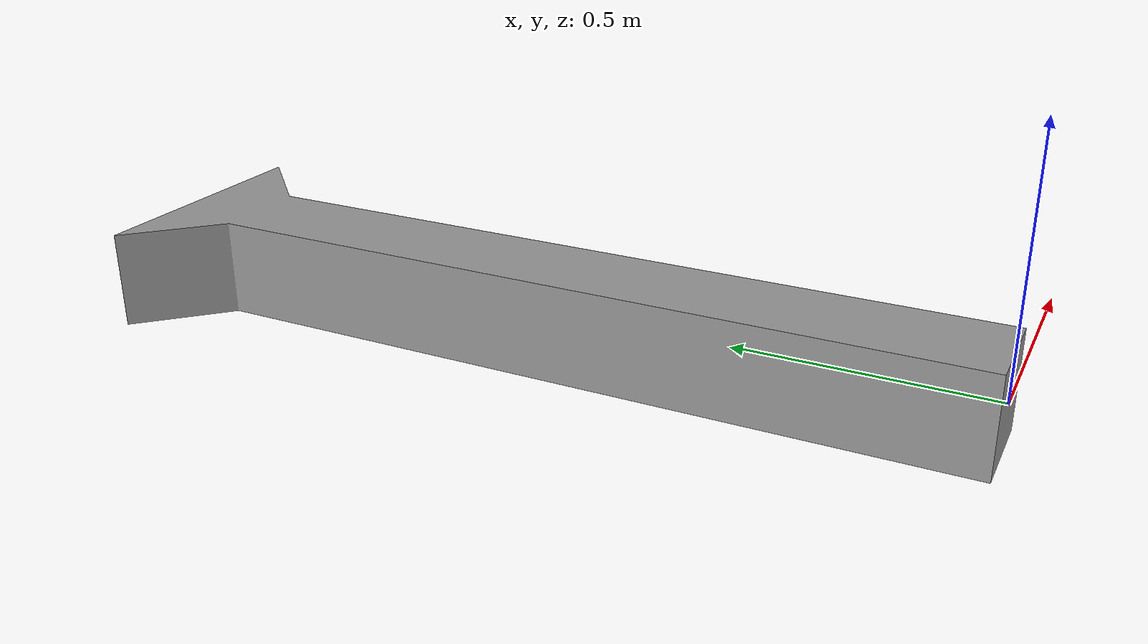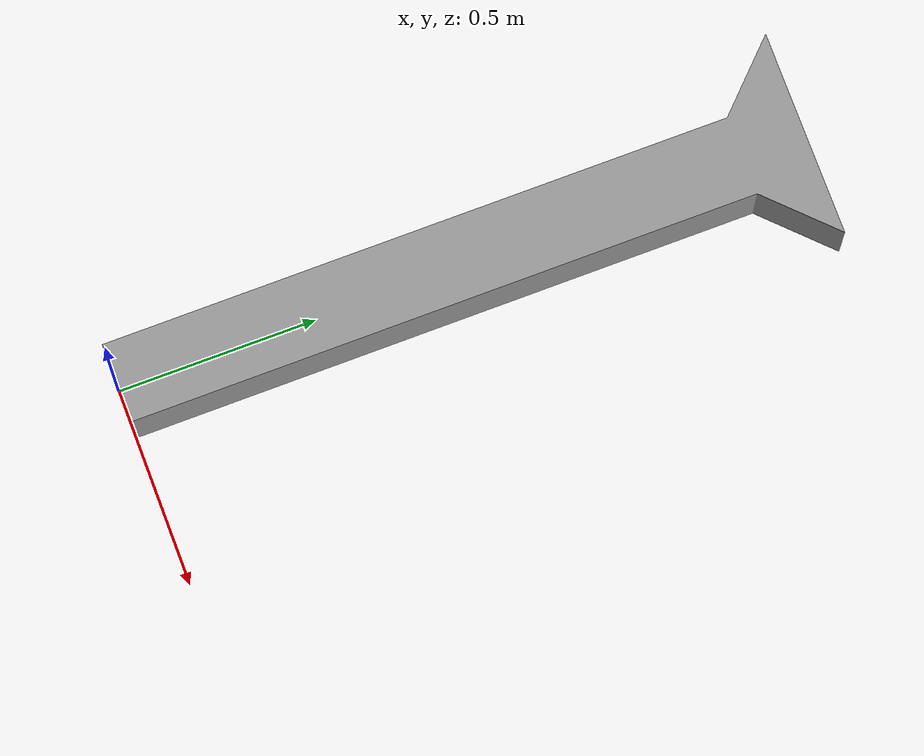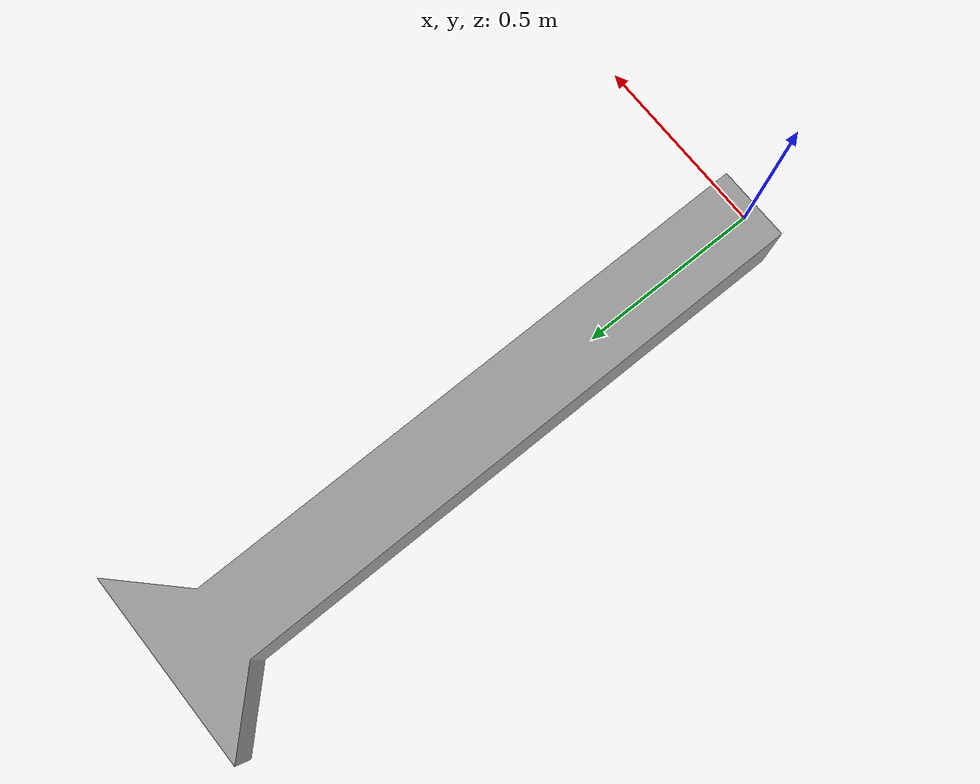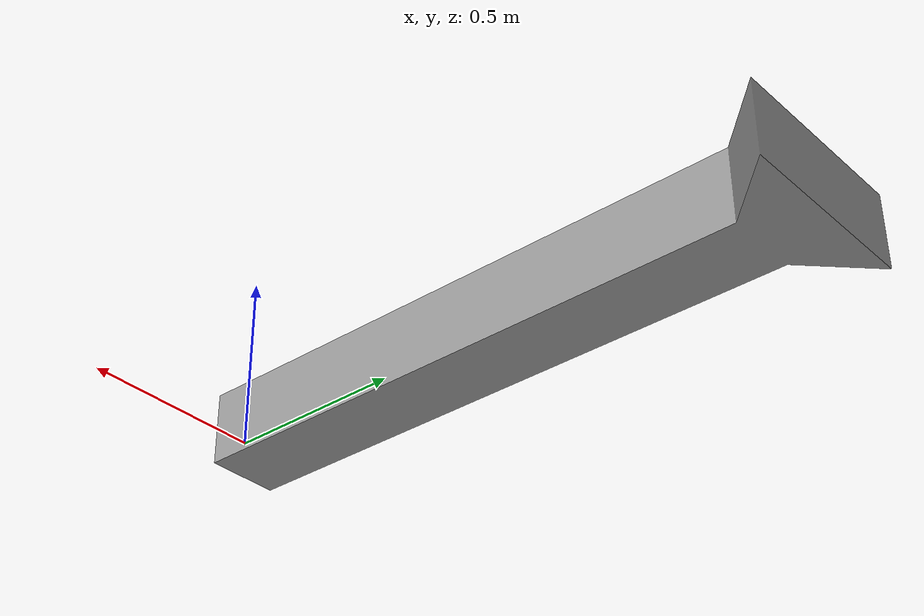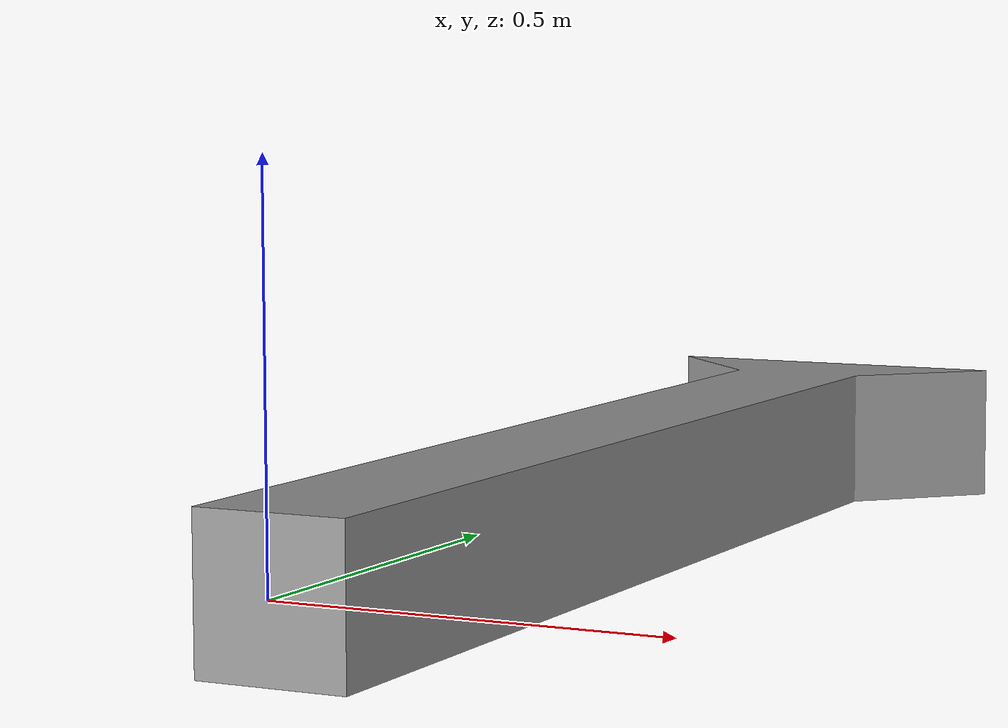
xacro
<?xml version="1.0"?>
<robot xmlns:xacro="http://wiki.ros.org/xacro"   name="dual_ur" >

  <link name="world" />

  <joint name="jizuo_to_world" type="fixed">
    <parent link="world"/>
    <child link="jizuo"/>
    <origin rpy="0 0 0" xyz="0 0 0"/>
  </joint>

  <link name="jizuo">
    <visual>
      <origin rpy="0 0 0" xyz="0 0 0"/>
      <geometry>
        <mesh filename="package://dual_ur_description/meshes/body.STL"/>
      </geometry>
      <material name="grey"/>
    </visual>
    <collision>
      <origin rpy="0 0 0" xyz="0 0 0"/>
      <geometry>
        <mesh filename="package://dual_ur_description/meshes/body.STL"/>
      </geometry>
    </collision>
  </link>

  </robot>
